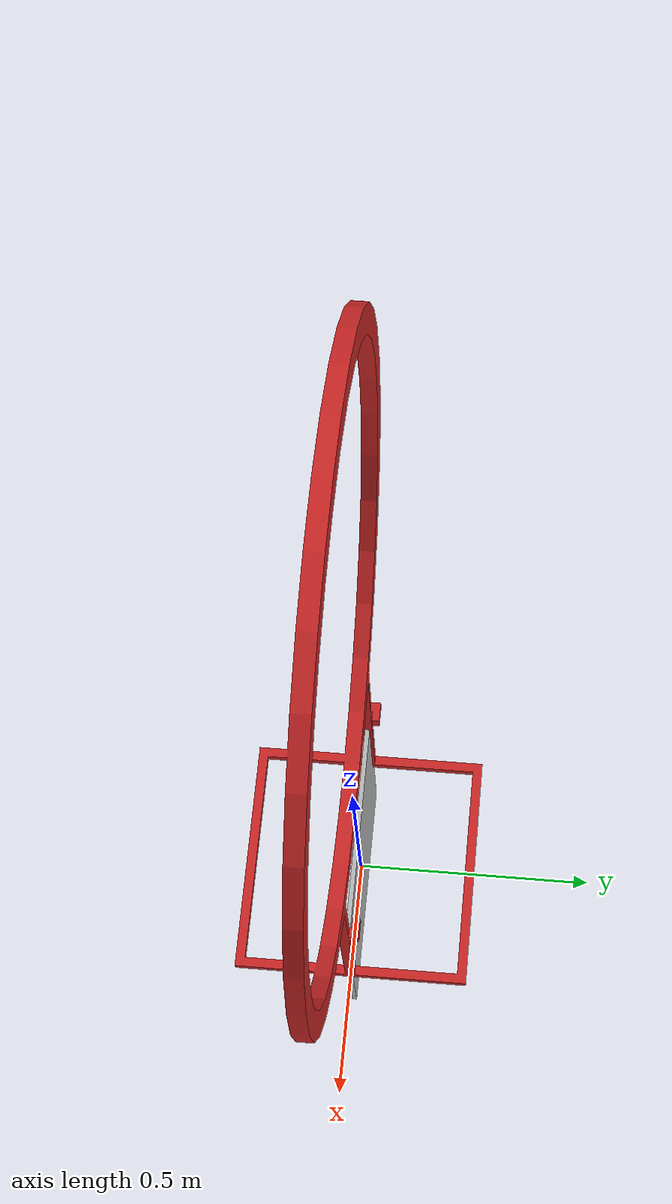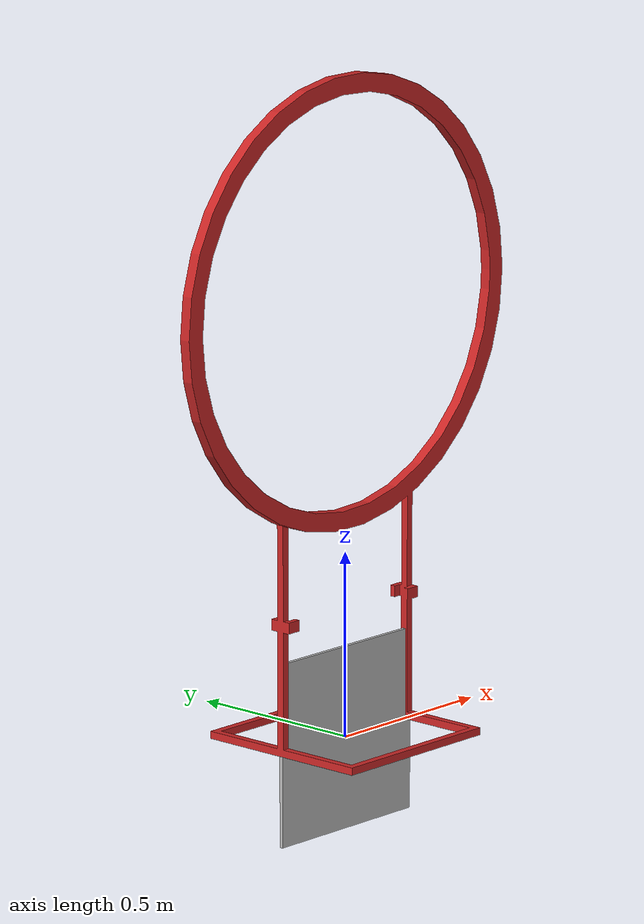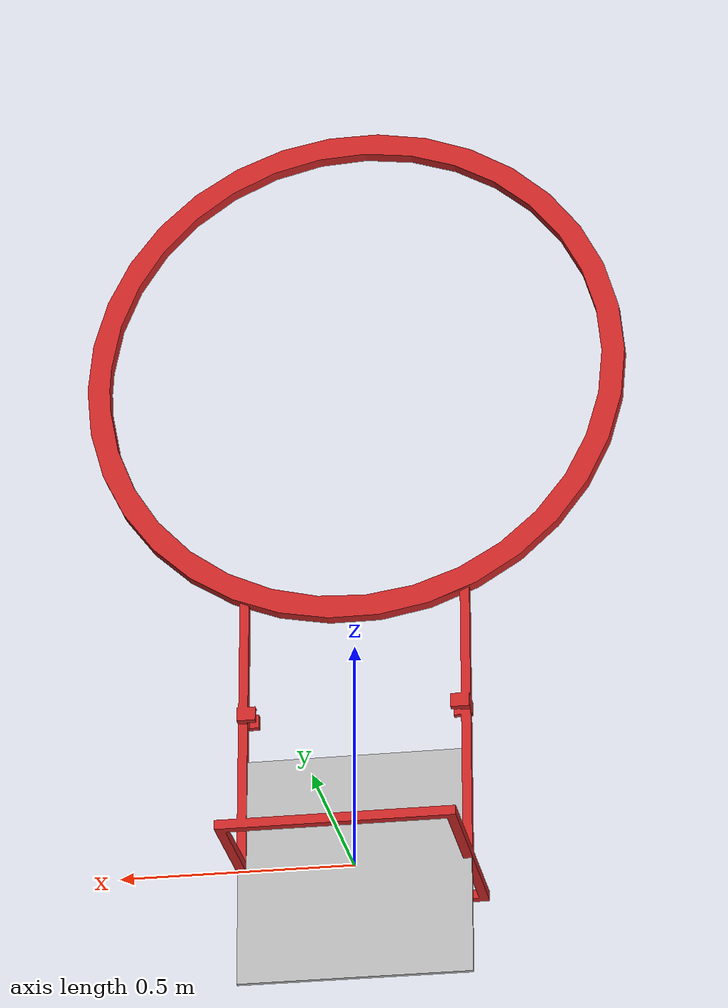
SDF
<?xml version='1.0'?>
<sdf version='1.4'>
  <model name="mark_ring_4">
    <link name='link1'>
      <pose>0 0 0 1.57 -1.57 0</pose>
      <inertial>
        <mass>0.490</mass>
        <inertia>
          <ixx>0</ixx>
          <ixy>0</ixy>
          <ixz>0</ixz>
          <iyy>0</iyy>
          <iyz>0</iyz>
          <izz>0</izz>
        </inertia>
      </inertial>
      <collision name='collision'>
        <geometry>
                <box>
                  <size>.496 .496 .01</size>
                </box>
        </geometry>
      </collision>

      <visual name='visual'>
        <geometry>
                <box>
                  <size>.496 .496 .01</size>
                </box>
        </geometry>

        <material>
          <script>
            <uri>model://mark_ring_4/materials/scripts</uri>
            <uri>model://mark_ring_4/materials/textures</uri>
            <name>Mark/Diffuse_4</name>
          </script>
        </material>
      </visual>
    </link>
  <link name='link2'>
        <inertial>
          <pose>-1.1e-05 -0.004833 0.61243 0 -0 0</pose>
          <mass>8.6055</mass>
          <inertia>
            <ixx>2.3731</ixx>
            <ixy>-1.4724e-06</ixy>
            <ixz>-1.6338e-05</ixz>
            <iyy>3.0442</iyy>
            <iyz>0.012591</iyz>
            <izz>0.73145</izz>
          </inertia>
        </inertial>
        <collision name='link2_collision'>
          <pose>0 0 0 1.5708 -0 0</pose>
          <geometry>
            <mesh>
              <scale>1 1 1</scale>
              <uri>model://mark_ring_4/materials/mark.STL</uri>
            </mesh>
          </geometry>
          <surface>
            <contact>
              <ode/>
            </contact>
            <bounce/>
            <friction>
              <torsional>
                <ode/>
              </torsional>
              <ode/>
            </friction>
          </surface>
          <max_contacts>10</max_contacts>
        </collision>
        <visual name='link2_visual'>
          <pose>0 0 0 1.5708 -0 0</pose>
          <geometry>
            <mesh>
              <scale>1 1 1</scale>
              <uri>model://mark_ring_4/materials/mark.STL</uri>
            </mesh>
          </geometry>
        <material>
          <script>
            <uri>file://media/materials/scripts/gazebo.material</uri>
            <name>Gazebo/Red</name>
          </script>
        </material>
        </visual>
      </link>
  </model>
</sdf>
